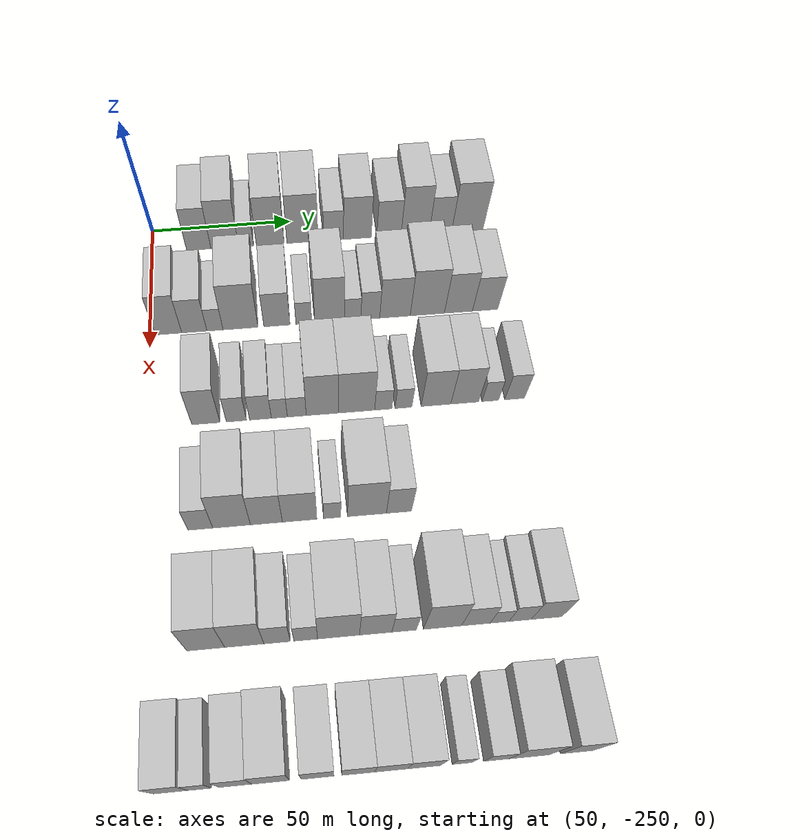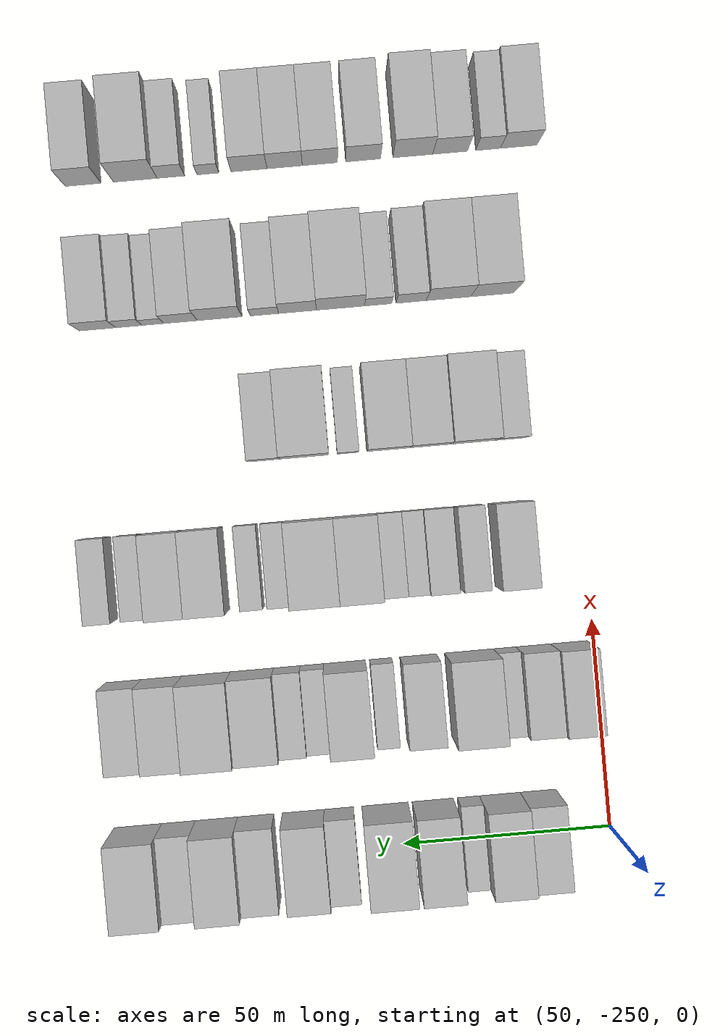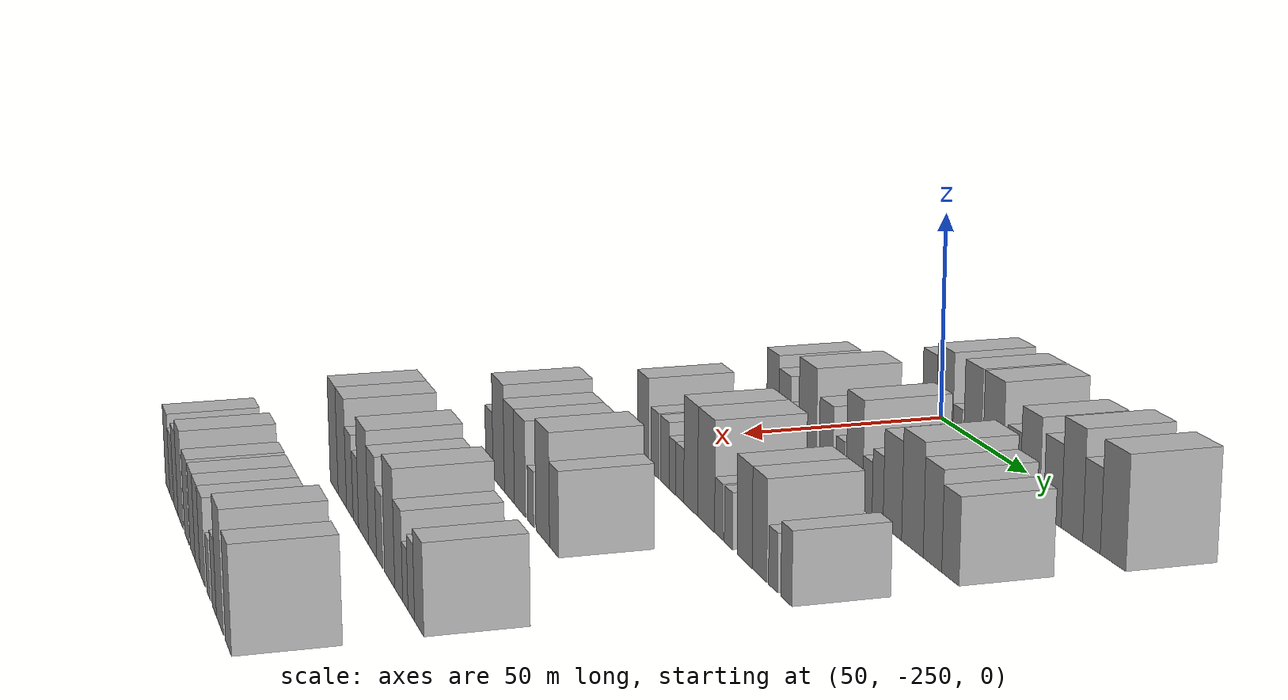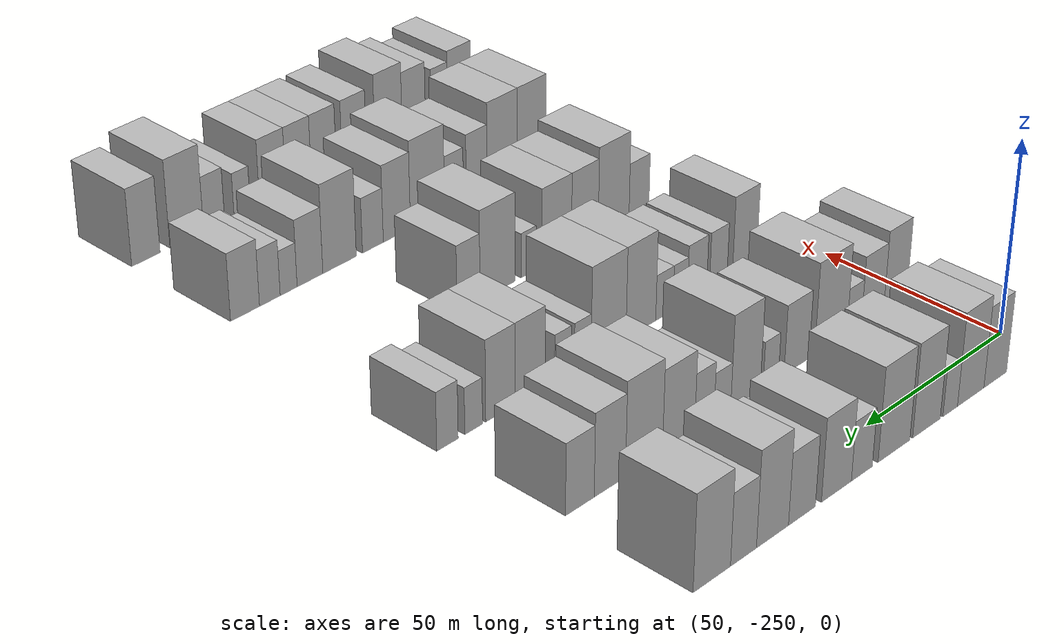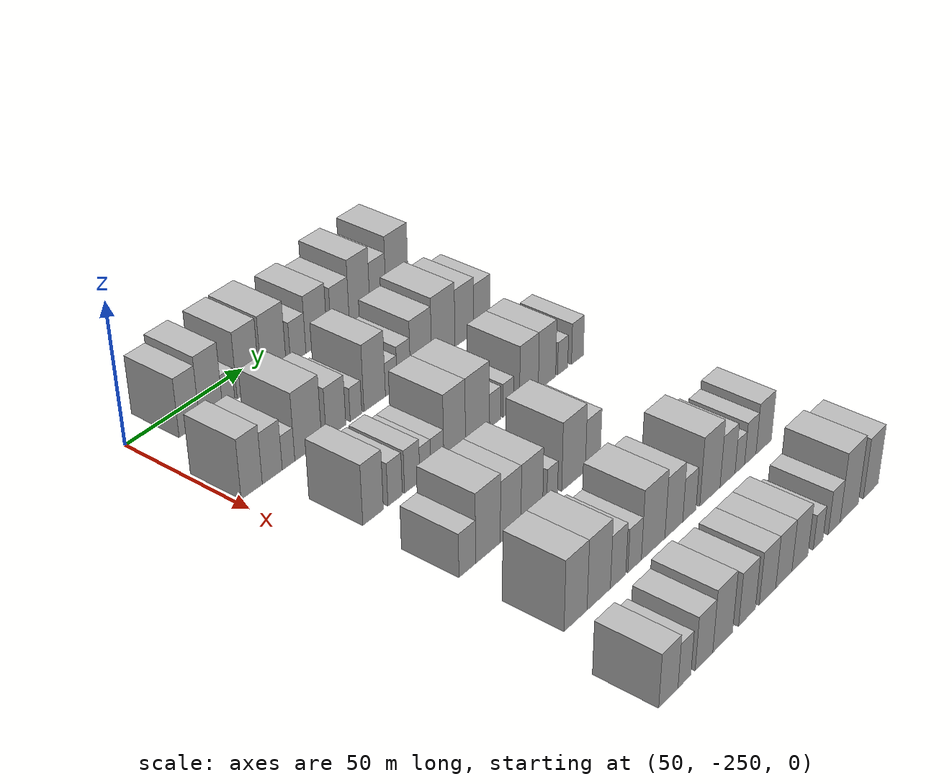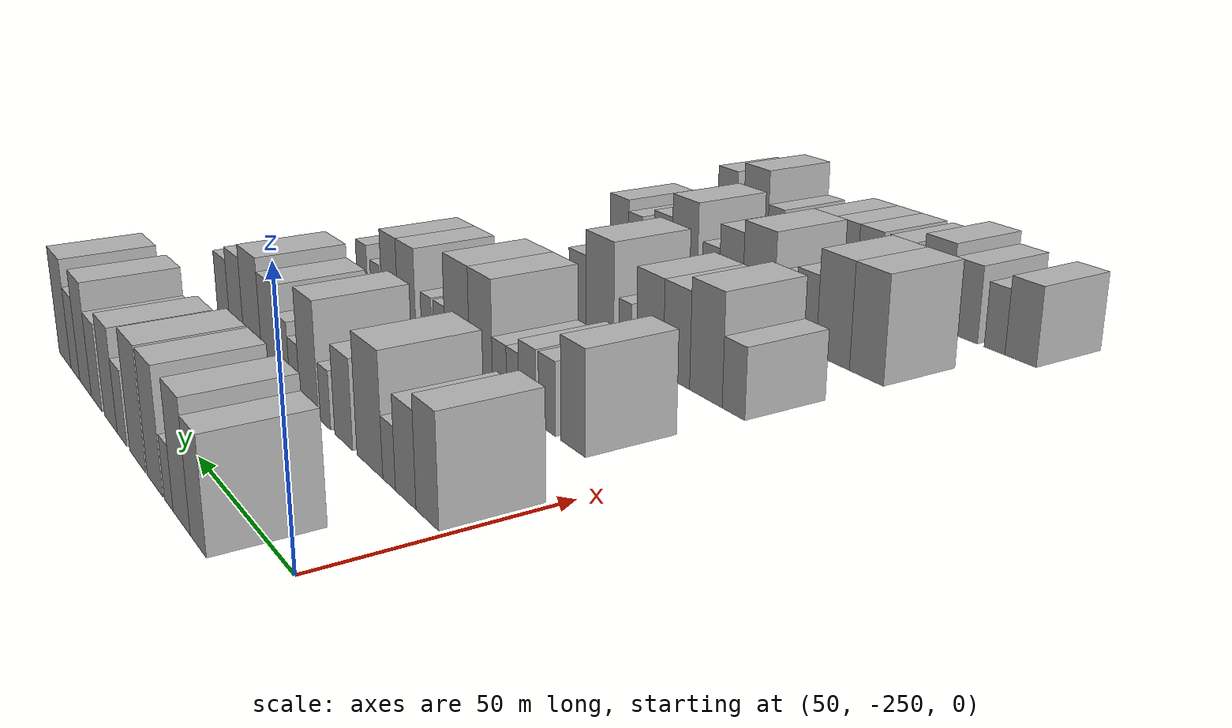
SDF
<sdf version="1.6">
 <world name="default">
  <model name="building_33">
   <static>1</static>
   <pose>50.0000 -233.4024 0 0.000000 0.000000 0.000000</pose>
   <link name="link">
    <pose>0 0 10.50 0 0 0</pose>
    <collision name="collision"><geometry><box><size>20.0000 8.6130 21.0000</size></box></geometry></collision>
    <visual name="visual">
     <cast_shadows>0</cast_shadows>
     <geometry><box><size>20.0000 8.6130 21.0000</size></box></geometry>
     <material>
      <script>
       <uri>model://HANNAS_wall/materials/scripts</uri>
       <uri>model://HANNAS_wall/materials/textures</uri>
       <name>vrc/HANNAS_wall</name>
      </script>
     </material>
    </visual>
   </link>
  </model>
  <model name="building_34">
   <static>1</static>
   <pose>50.0000 -224.1698 0 0.000000 0.000000 0.000000</pose>
   <link name="link">
    <pose>0 0 12.00 0 0 0</pose>
    <collision name="collision"><geometry><box><size>20.0000 9.8521 24.0000</size></box></geometry></collision>
    <visual name="visual">
     <cast_shadows>0</cast_shadows>
     <geometry><box><size>20.0000 9.8521 24.0000</size></box></geometry>
     <material>
      <script>
       <uri>model://HANNAS_wall/materials/scripts</uri>
       <uri>model://HANNAS_wall/materials/textures</uri>
       <name>vrc/HANNAS_wall</name>
      </script>
     </material>
    </visual>
   </link>
  </model>
  <model name="building_35">
   <static>1</static>
   <pose>50.0000 -216.5741 0 0.000000 0.000000 0.000000</pose>
   <link name="link">
    <pose>0 0 6.00 0 0 0</pose>
    <collision name="collision"><geometry><box><size>20.0000 5.3393 12.0000</size></box></geometry></collision>
    <visual name="visual">
     <cast_shadows>0</cast_shadows>
     <geometry><box><size>20.0000 5.3393 12.0000</size></box></geometry>
     <material>
      <script>
       <uri>model://HANNAS_wall/materials/scripts</uri>
       <uri>model://HANNAS_wall/materials/textures</uri>
       <name>vrc/HANNAS_wall</name>
      </script>
     </material>
    </visual>
   </link>
  </model>
  <model name="building_36">
   <static>1</static>
   <pose>50.0000 -207.9369 0 0.000000 0.000000 0.000000</pose>
   <link name="link">
    <pose>0 0 12.00 0 0 0</pose>
    <collision name="collision"><geometry><box><size>20.0000 9.9350 24.0000</size></box></geometry></collision>
    <visual name="visual">
     <cast_shadows>0</cast_shadows>
     <geometry><box><size>20.0000 9.9350 24.0000</size></box></geometry>
     <material>
      <script>
       <uri>model://HANNAS_wall/materials/scripts</uri>
       <uri>model://HANNAS_wall/materials/textures</uri>
       <name>vrc/HANNAS_wall</name>
      </script>
     </material>
    </visual>
   </link>
  </model>
  <model name="building_37">
   <static>1</static>
   <pose>50.0000 -196.3970 0 0.000000 0.000000 0.000000</pose>
   <link name="link">
    <pose>0 0 12.00 0 0 0</pose>
    <collision name="collision"><geometry><box><size>20.0000 11.1449 24.0000</size></box></geometry></collision>
    <visual name="visual">
     <cast_shadows>0</cast_shadows>
     <geometry><box><size>20.0000 11.1449 24.0000</size></box></geometry>
     <material>
      <script>
       <uri>model://HANNAS_wall/materials/scripts</uri>
       <uri>model://HANNAS_wall/materials/textures</uri>
       <name>vrc/HANNAS_wall</name>
      </script>
     </material>
    </visual>
   </link>
  </model>
  <model name="building_38">
   <static>1</static>
   <pose>50.0000 -185.2506 0 0.000000 0.000000 0.000000</pose>
   <link name="link">
    <pose>0 0 7.50 0 0 0</pose>
    <collision name="collision"><geometry><box><size>20.0000 7.1479 15.0000</size></box></geometry></collision>
    <visual name="visual">
     <cast_shadows>0</cast_shadows>
     <geometry><box><size>20.0000 7.1479 15.0000</size></box></geometry>
     <material>
      <script>
       <uri>model://HANNAS_wall/materials/scripts</uri>
       <uri>model://HANNAS_wall/materials/textures</uri>
       <name>vrc/HANNAS_wall</name>
      </script>
     </material>
    </visual>
   </link>
  </model>
  <model name="building_39">
   <static>1</static>
   <pose>50.0000 -176.6455 0 0.000000 0.000000 0.000000</pose>
   <link name="link">
    <pose>0 0 10.50 0 0 0</pose>
    <collision name="collision"><geometry><box><size>20.0000 10.0623 21.0000</size></box></geometry></collision>
    <visual name="visual">
     <cast_shadows>0</cast_shadows>
     <geometry><box><size>20.0000 10.0623 21.0000</size></box></geometry>
     <material>
      <script>
       <uri>model://HANNAS_wall/materials/scripts</uri>
       <uri>model://HANNAS_wall/materials/textures</uri>
       <name>vrc/HANNAS_wall</name>
      </script>
     </material>
    </visual>
   </link>
  </model>
  <model name="building_40">
   <static>1</static>
   <pose>50.0000 -165.2181 0 0.000000 0.000000 0.000000</pose>
   <link name="link">
    <pose>0 0 9.00 0 0 0</pose>
    <collision name="collision"><geometry><box><size>20.0000 8.7925 18.0000</size></box></geometry></collision>
    <visual name="visual">
     <cast_shadows>0</cast_shadows>
     <geometry><box><size>20.0000 8.7925 18.0000</size></box></geometry>
     <material>
      <script>
       <uri>model://HANNAS_wall/materials/scripts</uri>
       <uri>model://HANNAS_wall/materials/textures</uri>
       <name>vrc/HANNAS_wall</name>
      </script>
     </material>
    </visual>
   </link>
  </model>
  <model name="building_41">
   <static>1</static>
   <pose>50.0000 -155.7027 0 0.000000 0.000000 0.000000</pose>
   <link name="link">
    <pose>0 0 12.00 0 0 0</pose>
    <collision name="collision"><geometry><box><size>20.0000 10.2382 24.0000</size></box></geometry></collision>
    <visual name="visual">
     <cast_shadows>0</cast_shadows>
     <geometry><box><size>20.0000 10.2382 24.0000</size></box></geometry>
     <material>
      <script>
       <uri>model://HANNAS_wall/materials/scripts</uri>
       <uri>model://HANNAS_wall/materials/textures</uri>
       <name>vrc/HANNAS_wall</name>
      </script>
     </material>
    </visual>
   </link>
  </model>
  <model name="building_42">
   <static>1</static>
   <pose>50.0000 -146.5190 0 0.000000 0.000000 0.000000</pose>
   <link name="link">
    <pose>0 0 9.00 0 0 0</pose>
    <collision name="collision"><geometry><box><size>20.0000 8.1291 18.0000</size></box></geometry></collision>
    <visual name="visual">
     <cast_shadows>0</cast_shadows>
     <geometry><box><size>20.0000 8.1291 18.0000</size></box></geometry>
     <material>
      <script>
       <uri>model://HANNAS_wall/materials/scripts</uri>
       <uri>model://HANNAS_wall/materials/textures</uri>
       <name>vrc/HANNAS_wall</name>
      </script>
     </material>
    </visual>
   </link>
  </model>
  <model name="building_43">
   <static>1</static>
   <pose>50.0000 -136.7335 0 0.000000 0.000000 0.000000</pose>
   <link name="link">
    <pose>0 0 12.00 0 0 0</pose>
    <collision name="collision"><geometry><box><size>20.0000 11.4420 24.0000</size></box></geometry></collision>
    <visual name="visual">
     <cast_shadows>0</cast_shadows>
     <geometry><box><size>20.0000 11.4420 24.0000</size></box></geometry>
     <material>
      <script>
       <uri>model://HANNAS_wall/materials/scripts</uri>
       <uri>model://HANNAS_wall/materials/textures</uri>
       <name>vrc/HANNAS_wall</name>
      </script>
     </material>
    </visual>
   </link>
  </model>
  <model name="building_163">
   <static>1</static>
   <pose>85.0000 -243.8533 0 0.000000 0.000000 0.000000</pose>
   <link name="link">
    <pose>0 0 10.50 0 0 0</pose>
    <collision name="collision"><geometry><box><size>20.0000 8.8056 21.0000</size></box></geometry></collision>
    <visual name="visual">
     <cast_shadows>0</cast_shadows>
     <geometry><box><size>20.0000 8.8056 21.0000</size></box></geometry>
     <material>
      <script>
       <uri>model://HANNAS_wall/materials/scripts</uri>
       <uri>model://HANNAS_wall/materials/textures</uri>
       <name>vrc/HANNAS_wall</name>
      </script>
     </material>
    </visual>
   </link>
  </model>
  <model name="building_164">
   <static>1</static>
   <pose>85.0000 -235.2449 0 0.000000 0.000000 0.000000</pose>
   <link name="link">
    <pose>0 0 9.00 0 0 0</pose>
    <collision name="collision"><geometry><box><size>20.0000 8.4113 18.0000</size></box></geometry></collision>
    <visual name="visual">
     <cast_shadows>0</cast_shadows>
     <geometry><box><size>20.0000 8.4113 18.0000</size></box></geometry>
     <material>
      <script>
       <uri>model://HANNAS_wall/materials/scripts</uri>
       <uri>model://HANNAS_wall/materials/textures</uri>
       <name>vrc/HANNAS_wall</name>
      </script>
     </material>
    </visual>
   </link>
  </model>
  <model name="building_165">
   <static>1</static>
   <pose>85.0000 -228.3363 0 0.000000 0.000000 0.000000</pose>
   <link name="link">
    <pose>0 0 6.00 0 0 0</pose>
    <collision name="collision"><geometry><box><size>20.0000 5.4058 12.0000</size></box></geometry></collision>
    <visual name="visual">
     <cast_shadows>0</cast_shadows>
     <geometry><box><size>20.0000 5.4058 12.0000</size></box></geometry>
     <material>
      <script>
       <uri>model://HANNAS_wall/materials/scripts</uri>
       <uri>model://HANNAS_wall/materials/textures</uri>
       <name>vrc/HANNAS_wall</name>
      </script>
     </material>
    </visual>
   </link>
  </model>
  <model name="building_166">
   <static>1</static>
   <pose>85.0000 -219.7524 0 0.000000 0.000000 0.000000</pose>
   <link name="link">
    <pose>0 0 12.00 0 0 0</pose>
    <collision name="collision"><geometry><box><size>20.0000 11.7620 24.0000</size></box></geometry></collision>
    <visual name="visual">
     <cast_shadows>0</cast_shadows>
     <geometry><box><size>20.0000 11.7620 24.0000</size></box></geometry>
     <material>
      <script>
       <uri>model://HANNAS_wall/materials/scripts</uri>
       <uri>model://HANNAS_wall/materials/textures</uri>
       <name>vrc/HANNAS_wall</name>
      </script>
     </material>
    </visual>
   </link>
  </model>
  <model name="building_167">
   <static>1</static>
   <pose>85.0000 -207.4541 0 0.000000 0.000000 0.000000</pose>
   <link name="link">
    <pose>0 0 9.00 0 0 0</pose>
    <collision name="collision"><geometry><box><size>20.0000 8.8347 18.0000</size></box></geometry></collision>
    <visual name="visual">
     <cast_shadows>0</cast_shadows>
     <geometry><box><size>20.0000 8.8347 18.0000</size></box></geometry>
     <material>
      <script>
       <uri>model://HANNAS_wall/materials/scripts</uri>
       <uri>model://HANNAS_wall/materials/textures</uri>
       <name>vrc/HANNAS_wall</name>
      </script>
     </material>
    </visual>
   </link>
  </model>
  <model name="building_168">
   <static>1</static>
   <pose>85.0000 -198.3733 0 0.000000 0.000000 0.000000</pose>
   <link name="link">
    <pose>0 0 6.00 0 0 0</pose>
    <collision name="collision"><geometry><box><size>20.0000 5.3268 12.0000</size></box></geometry></collision>
    <visual name="visual">
     <cast_shadows>0</cast_shadows>
     <geometry><box><size>20.0000 5.3268 12.0000</size></box></geometry>
     <material>
      <script>
       <uri>model://HANNAS_wall/materials/scripts</uri>
       <uri>model://HANNAS_wall/materials/textures</uri>
       <name>vrc/HANNAS_wall</name>
      </script>
     </material>
    </visual>
   </link>
  </model>
  <model name="building_169">
   <static>1</static>
   <pose>85.0000 -189.6783 0 0.000000 0.000000 0.000000</pose>
   <link name="link">
    <pose>0 0 12.00 0 0 0</pose>
    <collision name="collision"><geometry><box><size>20.0000 10.0632 24.0000</size></box></geometry></collision>
    <visual name="visual">
     <cast_shadows>0</cast_shadows>
     <geometry><box><size>20.0000 10.0632 24.0000</size></box></geometry>
     <material>
      <script>
       <uri>model://HANNAS_wall/materials/scripts</uri>
       <uri>model://HANNAS_wall/materials/textures</uri>
       <name>vrc/HANNAS_wall</name>
      </script>
     </material>
    </visual>
   </link>
  </model>
  <model name="building_170">
   <static>1</static>
   <pose>85.0000 -181.8300 0 0.000000 0.000000 0.000000</pose>
   <link name="link">
    <pose>0 0 6.00 0 0 0</pose>
    <collision name="collision"><geometry><box><size>20.0000 5.6335 12.0000</size></box></geometry></collision>
    <visual name="visual">
     <cast_shadows>0</cast_shadows>
     <geometry><box><size>20.0000 5.6335 12.0000</size></box></geometry>
     <material>
      <script>
       <uri>model://HANNAS_wall/materials/scripts</uri>
       <uri>model://HANNAS_wall/materials/textures</uri>
       <name>vrc/HANNAS_wall</name>
      </script>
     </material>
    </visual>
   </link>
  </model>
  <model name="building_171">
   <static>1</static>
   <pose>85.0000 -175.8057 0 0.000000 0.000000 0.000000</pose>
   <link name="link">
    <pose>0 0 7.50 0 0 0</pose>
    <collision name="collision"><geometry><box><size>20.0000 6.4151 15.0000</size></box></geometry></collision>
    <visual name="visual">
     <cast_shadows>0</cast_shadows>
     <geometry><box><size>20.0000 6.4151 15.0000</size></box></geometry>
     <material>
      <script>
       <uri>model://HANNAS_wall/materials/scripts</uri>
       <uri>model://HANNAS_wall/materials/textures</uri>
       <name>vrc/HANNAS_wall</name>
      </script>
     </material>
    </visual>
   </link>
  </model>
  <model name="building_172">
   <static>1</static>
   <pose>85.0000 -167.3849 0 0.000000 0.000000 0.000000</pose>
   <link name="link">
    <pose>0 0 10.50 0 0 0</pose>
    <collision name="collision"><geometry><box><size>20.0000 10.4266 21.0000</size></box></geometry></collision>
    <visual name="visual">
     <cast_shadows>0</cast_shadows>
     <geometry><box><size>20.0000 10.4266 21.0000</size></box></geometry>
     <material>
      <script>
       <uri>model://HANNAS_wall/materials/scripts</uri>
       <uri>model://HANNAS_wall/materials/textures</uri>
       <name>vrc/HANNAS_wall</name>
      </script>
     </material>
    </visual>
   </link>
  </model>
  <model name="building_173">
   <static>1</static>
   <pose>85.0000 -156.3026 0 0.000000 0.000000 0.000000</pose>
   <link name="link">
    <pose>0 0 12.00 0 0 0</pose>
    <collision name="collision"><geometry><box><size>20.0000 11.7380 24.0000</size></box></geometry></collision>
    <visual name="visual">
     <cast_shadows>0</cast_shadows>
     <geometry><box><size>20.0000 11.7380 24.0000</size></box></geometry>
     <material>
      <script>
       <uri>model://HANNAS_wall/materials/scripts</uri>
       <uri>model://HANNAS_wall/materials/textures</uri>
       <name>vrc/HANNAS_wall</name>
      </script>
     </material>
    </visual>
   </link>
  </model>
  <model name="building_174">
   <static>1</static>
   <pose>85.0000 -145.5999 0 0.000000 0.000000 0.000000</pose>
   <link name="link">
    <pose>0 0 10.50 0 0 0</pose>
    <collision name="collision"><geometry><box><size>20.0000 9.6675 21.0000</size></box></geometry></collision>
    <visual name="visual">
     <cast_shadows>0</cast_shadows>
     <geometry><box><size>20.0000 9.6675 21.0000</size></box></geometry>
     <material>
      <script>
       <uri>model://HANNAS_wall/materials/scripts</uri>
       <uri>model://HANNAS_wall/materials/textures</uri>
       <name>vrc/HANNAS_wall</name>
      </script>
     </material>
    </visual>
   </link>
  </model>
  <model name="building_175">
   <static>1</static>
   <pose>85.0000 -136.4104 0 0.000000 0.000000 0.000000</pose>
   <link name="link">
    <pose>0 0 9.00 0 0 0</pose>
    <collision name="collision"><geometry><box><size>20.0000 8.7113 18.0000</size></box></geometry></collision>
    <visual name="visual">
     <cast_shadows>0</cast_shadows>
     <geometry><box><size>20.0000 8.7113 18.0000</size></box></geometry>
     <material>
      <script>
       <uri>model://HANNAS_wall/materials/scripts</uri>
       <uri>model://HANNAS_wall/materials/textures</uri>
       <name>vrc/HANNAS_wall</name>
      </script>
     </material>
    </visual>
   </link>
  </model>
  <model name="building_281">
   <static>1</static>
   <pose>120.0000 -231.8530 0 0.000000 0.000000 0.000000</pose>
   <link name="link">
    <pose>0 0 10.50 0 0 0</pose>
    <collision name="collision"><geometry><box><size>20.0000 8.8786 21.0000</size></box></geometry></collision>
    <visual name="visual">
     <cast_shadows>0</cast_shadows>
     <geometry><box><size>20.0000 8.8786 21.0000</size></box></geometry>
     <material>
      <script>
       <uri>model://HANNAS_wall/materials/scripts</uri>
       <uri>model://HANNAS_wall/materials/textures</uri>
       <name>vrc/HANNAS_wall</name>
      </script>
     </material>
    </visual>
   </link>
  </model>
  <model name="building_282">
   <static>1</static>
   <pose>120.0000 -222.2317 0 0.000000 0.000000 0.000000</pose>
   <link name="link">
    <pose>0 0 7.50 0 0 0</pose>
    <collision name="collision"><geometry><box><size>20.0000 6.3639 15.0000</size></box></geometry></collision>
    <visual name="visual">
     <cast_shadows>0</cast_shadows>
     <geometry><box><size>20.0000 6.3639 15.0000</size></box></geometry>
     <material>
      <script>
       <uri>model://HANNAS_wall/materials/scripts</uri>
       <uri>model://HANNAS_wall/materials/textures</uri>
       <name>vrc/HANNAS_wall</name>
      </script>
     </material>
    </visual>
   </link>
  </model>
  <model name="building_283">
   <static>1</static>
   <pose>120.0000 -214.6047 0 0.000000 0.000000 0.000000</pose>
   <link name="link">
    <pose>0 0 7.50 0 0 0</pose>
    <collision name="collision"><geometry><box><size>20.0000 6.8900 15.0000</size></box></geometry></collision>
    <visual name="visual">
     <cast_shadows>0</cast_shadows>
     <geometry><box><size>20.0000 6.8900 15.0000</size></box></geometry>
     <material>
      <script>
       <uri>model://HANNAS_wall/materials/scripts</uri>
       <uri>model://HANNAS_wall/materials/textures</uri>
       <name>vrc/HANNAS_wall</name>
      </script>
     </material>
    </visual>
   </link>
  </model>
  <model name="building_284">
   <static>1</static>
   <pose>120.0000 -208.6235 0 0.000000 0.000000 0.000000</pose>
   <link name="link">
    <pose>0 0 6.00 0 0 0</pose>
    <collision name="collision"><geometry><box><size>20.0000 5.0725 12.0000</size></box></geometry></collision>
    <visual name="visual">
     <cast_shadows>0</cast_shadows>
     <geometry><box><size>20.0000 5.0725 12.0000</size></box></geometry>
     <material>
      <script>
       <uri>model://HANNAS_wall/materials/scripts</uri>
       <uri>model://HANNAS_wall/materials/textures</uri>
       <name>vrc/HANNAS_wall</name>
      </script>
     </material>
    </visual>
   </link>
  </model>
  <model name="building_285">
   <static>1</static>
   <pose>120.0000 -203.0892 0 0.000000 0.000000 0.000000</pose>
   <link name="link">
    <pose>0 0 6.00 0 0 0</pose>
    <collision name="collision"><geometry><box><size>20.0000 5.9961 12.0000</size></box></geometry></collision>
    <visual name="visual">
     <cast_shadows>0</cast_shadows>
     <geometry><box><size>20.0000 5.9961 12.0000</size></box></geometry>
     <material>
      <script>
       <uri>model://HANNAS_wall/materials/scripts</uri>
       <uri>model://HANNAS_wall/materials/textures</uri>
       <name>vrc/HANNAS_wall</name>
      </script>
     </material>
    </visual>
   </link>
  </model>
  <model name="building_286">
   <static>1</static>
   <pose>120.0000 -194.9878 0 0.000000 0.000000 0.000000</pose>
   <link name="link">
    <pose>0 0 12.00 0 0 0</pose>
    <collision name="collision"><geometry><box><size>20.0000 10.2066 24.0000</size></box></geometry></collision>
    <visual name="visual">
     <cast_shadows>0</cast_shadows>
     <geometry><box><size>20.0000 10.2066 24.0000</size></box></geometry>
     <material>
      <script>
       <uri>model://HANNAS_wall/materials/scripts</uri>
       <uri>model://HANNAS_wall/materials/textures</uri>
       <name>vrc/HANNAS_wall</name>
      </script>
     </material>
    </visual>
   </link>
  </model>
  <model name="building_287">
   <static>1</static>
   <pose>120.0000 -184.0534 0 0.000000 0.000000 0.000000</pose>
   <link name="link">
    <pose>0 0 12.00 0 0 0</pose>
    <collision name="collision"><geometry><box><size>20.0000 11.6623 24.0000</size></box></geometry></collision>
    <visual name="visual">
     <cast_shadows>0</cast_shadows>
     <geometry><box><size>20.0000 11.6623 24.0000</size></box></geometry>
     <material>
      <script>
       <uri>model://HANNAS_wall/materials/scripts</uri>
       <uri>model://HANNAS_wall/materials/textures</uri>
       <name>vrc/HANNAS_wall</name>
      </script>
     </material>
    </visual>
   </link>
  </model>
  <model name="building_288">
   <static>1</static>
   <pose>120.0000 -175.4624 0 0.000000 0.000000 0.000000</pose>
   <link name="link">
    <pose>0 0 6.00 0 0 0</pose>
    <collision name="collision"><geometry><box><size>20.0000 5.5197 12.0000</size></box></geometry></collision>
    <visual name="visual">
     <cast_shadows>0</cast_shadows>
     <geometry><box><size>20.0000 5.5197 12.0000</size></box></geometry>
     <material>
      <script>
       <uri>model://HANNAS_wall/materials/scripts</uri>
       <uri>model://HANNAS_wall/materials/textures</uri>
       <name>vrc/HANNAS_wall</name>
      </script>
     </material>
    </visual>
   </link>
  </model>
  <model name="building_289">
   <static>1</static>
   <pose>120.0000 -168.9992 0 0.000000 0.000000 0.000000</pose>
   <link name="link">
    <pose>0 0 6.00 0 0 0</pose>
    <collision name="collision"><geometry><box><size>20.0000 5.4068 12.0000</size></box></geometry></collision>
    <visual name="visual">
     <cast_shadows>0</cast_shadows>
     <geometry><box><size>20.0000 5.4068 12.0000</size></box></geometry>
     <material>
      <script>
       <uri>model://HANNAS_wall/materials/scripts</uri>
       <uri>model://HANNAS_wall/materials/textures</uri>
       <name>vrc/HANNAS_wall</name>
      </script>
     </material>
    </visual>
   </link>
  </model>
  <model name="building_290">
   <static>1</static>
   <pose>120.0000 -158.5037 0 0.000000 0.000000 0.000000</pose>
   <link name="link">
    <pose>0 0 10.50 0 0 0</pose>
    <collision name="collision"><geometry><box><size>20.0000 9.5843 21.0000</size></box></geometry></collision>
    <visual name="visual">
     <cast_shadows>0</cast_shadows>
     <geometry><box><size>20.0000 9.5843 21.0000</size></box></geometry>
     <material>
      <script>
       <uri>model://HANNAS_wall/materials/scripts</uri>
       <uri>model://HANNAS_wall/materials/textures</uri>
       <name>vrc/HANNAS_wall</name>
      </script>
     </material>
    </visual>
   </link>
  </model>
  <model name="building_291">
   <static>1</static>
   <pose>120.0000 -149.1790 0 0.000000 0.000000 0.000000</pose>
   <link name="link">
    <pose>0 0 10.50 0 0 0</pose>
    <collision name="collision"><geometry><box><size>20.0000 9.0650 21.0000</size></box></geometry></collision>
    <visual name="visual">
     <cast_shadows>0</cast_shadows>
     <geometry><box><size>20.0000 9.0650 21.0000</size></box></geometry>
     <material>
      <script>
       <uri>model://HANNAS_wall/materials/scripts</uri>
       <uri>model://HANNAS_wall/materials/textures</uri>
       <name>vrc/HANNAS_wall</name>
      </script>
     </material>
    </visual>
   </link>
  </model>
  <model name="building_292">
   <static>1</static>
   <pose>120.0000 -140.9449 0 0.000000 0.000000 0.000000</pose>
   <link name="link">
    <pose>0 0 6.00 0 0 0</pose>
    <collision name="collision"><geometry><box><size>20.0000 5.4032 12.0000</size></box></geometry></collision>
    <visual name="visual">
     <cast_shadows>0</cast_shadows>
     <geometry><box><size>20.0000 5.4032 12.0000</size></box></geometry>
     <material>
      <script>
       <uri>model://HANNAS_wall/materials/scripts</uri>
       <uri>model://HANNAS_wall/materials/textures</uri>
       <name>vrc/HANNAS_wall</name>
      </script>
     </material>
    </visual>
   </link>
  </model>
  <model name="building_293">
   <static>1</static>
   <pose>120.0000 -133.0382 0 0.000000 0.000000 0.000000</pose>
   <link name="link">
    <pose>0 0 7.50 0 0 0</pose>
    <collision name="collision"><geometry><box><size>20.0000 6.4101 15.0000</size></box></geometry></collision>
    <visual name="visual">
     <cast_shadows>0</cast_shadows>
     <geometry><box><size>20.0000 6.4101 15.0000</size></box></geometry>
     <material>
      <script>
       <uri>model://HANNAS_wall/materials/scripts</uri>
       <uri>model://HANNAS_wall/materials/textures</uri>
       <name>vrc/HANNAS_wall</name>
      </script>
     </material>
    </visual>
   </link>
  </model>
  <model name="building_409">
   <static>1</static>
   <pose>155.0000 -233.9638 0 0.000000 0.000000 0.000000</pose>
   <link name="link">
    <pose>0 0 7.50 0 0 0</pose>
    <collision name="collision"><geometry><box><size>20.0000 7.3293 15.0000</size></box></geometry></collision>
    <visual name="visual">
     <cast_shadows>0</cast_shadows>
     <geometry><box><size>20.0000 7.3293 15.0000</size></box></geometry>
     <material>
      <script>
       <uri>model://HANNAS_wall/materials/scripts</uri>
       <uri>model://HANNAS_wall/materials/textures</uri>
       <name>vrc/HANNAS_wall</name>
      </script>
     </material>
    </visual>
   </link>
  </model>
  <model name="building_410">
   <static>1</static>
   <pose>155.0000 -224.7346 0 0.000000 0.000000 0.000000</pose>
   <link name="link">
    <pose>0 0 12.00 0 0 0</pose>
    <collision name="collision"><geometry><box><size>20.0000 11.1290 24.0000</size></box></geometry></collision>
    <visual name="visual">
     <cast_shadows>0</cast_shadows>
     <geometry><box><size>20.0000 11.1290 24.0000</size></box></geometry>
     <material>
      <script>
       <uri>model://HANNAS_wall/materials/scripts</uri>
       <uri>model://HANNAS_wall/materials/textures</uri>
       <name>vrc/HANNAS_wall</name>
      </script>
     </material>
    </visual>
   </link>
  </model>
  <model name="building_411">
   <static>1</static>
   <pose>155.0000 -214.4296 0 0.000000 0.000000 0.000000</pose>
   <link name="link">
    <pose>0 0 10.50 0 0 0</pose>
    <collision name="collision"><geometry><box><size>20.0000 9.4811 21.0000</size></box></geometry></collision>
    <visual name="visual">
     <cast_shadows>0</cast_shadows>
     <geometry><box><size>20.0000 9.4811 21.0000</size></box></geometry>
     <material>
      <script>
       <uri>model://HANNAS_wall/materials/scripts</uri>
       <uri>model://HANNAS_wall/materials/textures</uri>
       <name>vrc/HANNAS_wall</name>
      </script>
     </material>
    </visual>
   </link>
  </model>
  <model name="building_412">
   <static>1</static>
   <pose>155.0000 -204.5675 0 0.000000 0.000000 0.000000</pose>
   <link name="link">
    <pose>0 0 10.50 0 0 0</pose>
    <collision name="collision"><geometry><box><size>20.0000 10.2431 21.0000</size></box></geometry></collision>
    <visual name="visual">
     <cast_shadows>0</cast_shadows>
     <geometry><box><size>20.0000 10.2431 21.0000</size></box></geometry>
     <material>
      <script>
       <uri>model://HANNAS_wall/materials/scripts</uri>
       <uri>model://HANNAS_wall/materials/textures</uri>
       <name>vrc/HANNAS_wall</name>
      </script>
     </material>
    </visual>
   </link>
  </model>
  <model name="building_413">
   <static>1</static>
   <pose>155.0000 -194.8703 0 0.000000 0.000000 0.000000</pose>
   <link name="link">
    <pose>0 0 6.00 0 0 0</pose>
    <collision name="collision"><geometry><box><size>20.0000 5.1512 12.0000</size></box></geometry></collision>
    <visual name="visual">
     <cast_shadows>0</cast_shadows>
     <geometry><box><size>20.0000 5.1512 12.0000</size></box></geometry>
     <material>
      <script>
       <uri>model://HANNAS_wall/materials/scripts</uri>
       <uri>model://HANNAS_wall/materials/textures</uri>
       <name>vrc/HANNAS_wall</name>
      </script>
     </material>
    </visual>
   </link>
  </model>
  <model name="building_414">
   <static>1</static>
   <pose>155.0000 -184.4607 0 0.000000 0.000000 0.000000</pose>
   <link name="link">
    <pose>0 0 12.00 0 0 0</pose>
    <collision name="collision"><geometry><box><size>20.0000 11.6682 24.0000</size></box></geometry></collision>
    <visual name="visual">
     <cast_shadows>0</cast_shadows>
     <geometry><box><size>20.0000 11.6682 24.0000</size></box></geometry>
     <material>
      <script>
       <uri>model://HANNAS_wall/materials/scripts</uri>
       <uri>model://HANNAS_wall/materials/textures</uri>
       <name>vrc/HANNAS_wall</name>
      </script>
     </material>
    </visual>
   </link>
  </model>
  <model name="building_415">
   <static>1</static>
   <pose>155.0000 -174.8527 0 0.000000 0.000000 0.000000</pose>
   <link name="link">
    <pose>0 0 9.00 0 0 0</pose>
    <collision name="collision"><geometry><box><size>20.0000 7.5477 18.0000</size></box></geometry></collision>
    <visual name="visual">
     <cast_shadows>0</cast_shadows>
     <geometry><box><size>20.0000 7.5477 18.0000</size></box></geometry>
     <material>
      <script>
       <uri>model://HANNAS_wall/materials/scripts</uri>
       <uri>model://HANNAS_wall/materials/textures</uri>
       <name>vrc/HANNAS_wall</name>
      </script>
     </material>
    </visual>
   </link>
  </model>
  <model name="building_528">
   <static>1</static>
   <pose>190.0000 -232.8544 0 0.000000 0.000000 0.000000</pose>
   <link name="link">
    <pose>0 0 12.00 0 0 0</pose>
    <collision name="collision"><geometry><box><size>20.0000 10.4141 24.0000</size></box></geometry></collision>
    <visual name="visual">
     <cast_shadows>0</cast_shadows>
     <geometry><box><size>20.0000 10.4141 24.0000</size></box></geometry>
     <material>
      <script>
       <uri>model://HANNAS_wall/materials/scripts</uri>
       <uri>model://HANNAS_wall/materials/textures</uri>
       <name>vrc/HANNAS_wall</name>
      </script>
     </material>
    </visual>
   </link>
  </model>
  <model name="building_529">
   <static>1</static>
   <pose>190.0000 -222.2458 0 0.000000 0.000000 0.000000</pose>
   <link name="link">
    <pose>0 0 12.00 0 0 0</pose>
    <collision name="collision"><geometry><box><size>20.0000 10.8031 24.0000</size></box></geometry></collision>
    <visual name="visual">
     <cast_shadows>0</cast_shadows>
     <geometry><box><size>20.0000 10.8031 24.0000</size></box></geometry>
     <material>
      <script>
       <uri>model://HANNAS_wall/materials/scripts</uri>
       <uri>model://HANNAS_wall/materials/textures</uri>
       <name>vrc/HANNAS_wall</name>
      </script>
     </material>
    </visual>
   </link>
  </model>
  <model name="building_530">
   <static>1</static>
   <pose>190.0000 -213.1835 0 0.000000 0.000000 0.000000</pose>
   <link name="link">
    <pose>0 0 9.00 0 0 0</pose>
    <collision name="collision"><geometry><box><size>20.0000 7.3214 18.0000</size></box></geometry></collision>
    <visual name="visual">
     <cast_shadows>0</cast_shadows>
     <geometry><box><size>20.0000 7.3214 18.0000</size></box></geometry>
     <material>
      <script>
       <uri>model://HANNAS_wall/materials/scripts</uri>
       <uri>model://HANNAS_wall/materials/textures</uri>
       <name>vrc/HANNAS_wall</name>
      </script>
     </material>
    </visual>
   </link>
  </model>
  <model name="building_531">
   <static>1</static>
   <pose>190.0000 -205.2515 0 0.000000 0.000000 0.000000</pose>
   <link name="link">
    <pose>0 0 7.50 0 0 0</pose>
    <collision name="collision"><geometry><box><size>20.0000 6.5425 15.0000</size></box></geometry></collision>
    <visual name="visual">
     <cast_shadows>0</cast_shadows>
     <geometry><box><size>20.0000 6.5425 15.0000</size></box></geometry>
     <material>
      <script>
       <uri>model://HANNAS_wall/materials/scripts</uri>
       <uri>model://HANNAS_wall/materials/textures</uri>
       <name>vrc/HANNAS_wall</name>
      </script>
     </material>
    </visual>
   </link>
  </model>
  <model name="building_532">
   <static>1</static>
   <pose>190.0000 -196.1593 0 0.000000 0.000000 0.000000</pose>
   <link name="link">
    <pose>0 0 12.00 0 0 0</pose>
    <collision name="collision"><geometry><box><size>20.0000 11.6418 24.0000</size></box></geometry></collision>
    <visual name="visual">
     <cast_shadows>0</cast_shadows>
     <geometry><box><size>20.0000 11.6418 24.0000</size></box></geometry>
     <material>
      <script>
       <uri>model://HANNAS_wall/materials/scripts</uri>
       <uri>model://HANNAS_wall/materials/textures</uri>
       <name>vrc/HANNAS_wall</name>
      </script>
     </material>
    </visual>
   </link>
  </model>
  <model name="building_533">
   <static>1</static>
   <pose>190.0000 -185.7989 0 0.000000 0.000000 0.000000</pose>
   <link name="link">
    <pose>0 0 10.50 0 0 0</pose>
    <collision name="collision"><geometry><box><size>20.0000 9.0792 21.0000</size></box></geometry></collision>
    <visual name="visual">
     <cast_shadows>0</cast_shadows>
     <geometry><box><size>20.0000 9.0792 21.0000</size></box></geometry>
     <material>
      <script>
       <uri>model://HANNAS_wall/materials/scripts</uri>
       <uri>model://HANNAS_wall/materials/textures</uri>
       <name>vrc/HANNAS_wall</name>
      </script>
     </material>
    </visual>
   </link>
  </model>
  <model name="building_534">
   <static>1</static>
   <pose>190.0000 -177.8338 0 0.000000 0.000000 0.000000</pose>
   <link name="link">
    <pose>0 0 7.50 0 0 0</pose>
    <collision name="collision"><geometry><box><size>20.0000 6.8509 15.0000</size></box></geometry></collision>
    <visual name="visual">
     <cast_shadows>0</cast_shadows>
     <geometry><box><size>20.0000 6.8509 15.0000</size></box></geometry>
     <material>
      <script>
       <uri>model://HANNAS_wall/materials/scripts</uri>
       <uri>model://HANNAS_wall/materials/textures</uri>
       <name>vrc/HANNAS_wall</name>
      </script>
     </material>
    </visual>
   </link>
  </model>
  <model name="building_535">
   <static>1</static>
   <pose>190.0000 -167.0219 0 0.000000 0.000000 0.000000</pose>
   <link name="link">
    <pose>0 0 12.00 0 0 0</pose>
    <collision name="collision"><geometry><box><size>20.0000 10.7730 24.0000</size></box></geometry></collision>
    <visual name="visual">
     <cast_shadows>0</cast_shadows>
     <geometry><box><size>20.0000 10.7730 24.0000</size></box></geometry>
     <material>
      <script>
       <uri>model://HANNAS_wall/materials/scripts</uri>
       <uri>model://HANNAS_wall/materials/textures</uri>
       <name>vrc/HANNAS_wall</name>
      </script>
     </material>
    </visual>
   </link>
  </model>
  <model name="building_536">
   <static>1</static>
   <pose>190.0000 -157.5748 0 0.000000 0.000000 0.000000</pose>
   <link name="link">
    <pose>0 0 9.00 0 0 0</pose>
    <collision name="collision"><geometry><box><size>20.0000 8.1211 18.0000</size></box></geometry></collision>
    <visual name="visual">
     <cast_shadows>0</cast_shadows>
     <geometry><box><size>20.0000 8.1211 18.0000</size></box></geometry>
     <material>
      <script>
       <uri>model://HANNAS_wall/materials/scripts</uri>
       <uri>model://HANNAS_wall/materials/textures</uri>
       <name>vrc/HANNAS_wall</name>
      </script>
     </material>
    </visual>
   </link>
  </model>
  <model name="building_537">
   <static>1</static>
   <pose>190.0000 -150.8769 0 0.000000 0.000000 0.000000</pose>
   <link name="link">
    <pose>0 0 6.00 0 0 0</pose>
    <collision name="collision"><geometry><box><size>20.0000 5.2747 12.0000</size></box></geometry></collision>
    <visual name="visual">
     <cast_shadows>0</cast_shadows>
     <geometry><box><size>20.0000 5.2747 12.0000</size></box></geometry>
     <material>
      <script>
       <uri>model://HANNAS_wall/materials/scripts</uri>
       <uri>model://HANNAS_wall/materials/textures</uri>
       <name>vrc/HANNAS_wall</name>
      </script>
     </material>
    </visual>
   </link>
  </model>
  <model name="building_538">
   <static>1</static>
   <pose>190.0000 -145.0642 0 0.000000 0.000000 0.000000</pose>
   <link name="link">
    <pose>0 0 7.50 0 0 0</pose>
    <collision name="collision"><geometry><box><size>20.0000 6.3507 15.0000</size></box></geometry></collision>
    <visual name="visual">
     <cast_shadows>0</cast_shadows>
     <geometry><box><size>20.0000 6.3507 15.0000</size></box></geometry>
     <material>
      <script>
       <uri>model://HANNAS_wall/materials/scripts</uri>
       <uri>model://HANNAS_wall/materials/textures</uri>
       <name>vrc/HANNAS_wall</name>
      </script>
     </material>
    </visual>
   </link>
  </model>
  <model name="building_539">
   <static>1</static>
   <pose>190.0000 -137.4971 0 0.000000 0.000000 0.000000</pose>
   <link name="link">
    <pose>0 0 9.00 0 0 0</pose>
    <collision name="collision"><geometry><box><size>20.0000 8.7835 18.0000</size></box></geometry></collision>
    <visual name="visual">
     <cast_shadows>0</cast_shadows>
     <geometry><box><size>20.0000 8.7835 18.0000</size></box></geometry>
     <material>
      <script>
       <uri>model://HANNAS_wall/materials/scripts</uri>
       <uri>model://HANNAS_wall/materials/textures</uri>
       <name>vrc/HANNAS_wall</name>
      </script>
     </material>
    </visual>
   </link>
  </model>
  <model name="building_659">
   <static>1</static>
   <pose>225.0000 -242.2893 0 0.000000 0.000000 0.000000</pose>
   <link name="link">
    <pose>0 0 9.00 0 0 0</pose>
    <collision name="collision"><geometry><box><size>20.0000 8.7606 18.0000</size></box></geometry></collision>
    <visual name="visual">
     <cast_shadows>0</cast_shadows>
     <geometry><box><size>20.0000 8.7606 18.0000</size></box></geometry>
     <material>
      <script>
       <uri>model://HANNAS_wall/materials/scripts</uri>
       <uri>model://HANNAS_wall/materials/textures</uri>
       <name>vrc/HANNAS_wall</name>
      </script>
     </material>
    </visual>
   </link>
  </model>
  <model name="building_660">
   <static>1</static>
   <pose>225.0000 -234.9048 0 0.000000 0.000000 0.000000</pose>
   <link name="link">
    <pose>0 0 7.50 0 0 0</pose>
    <collision name="collision"><geometry><box><size>20.0000 6.0083 15.0000</size></box></geometry></collision>
    <visual name="visual">
     <cast_shadows>0</cast_shadows>
     <geometry><box><size>20.0000 6.0083 15.0000</size></box></geometry>
     <material>
      <script>
       <uri>model://HANNAS_wall/materials/scripts</uri>
       <uri>model://HANNAS_wall/materials/textures</uri>
       <name>vrc/HANNAS_wall</name>
      </script>
     </material>
    </visual>
   </link>
  </model>
  <model name="building_661">
   <static>1</static>
   <pose>225.0000 -225.7123 0 0.000000 0.000000 0.000000</pose>
   <link name="link">
    <pose>0 0 9.00 0 0 0</pose>
    <collision name="collision"><geometry><box><size>20.0000 8.3767 18.0000</size></box></geometry></collision>
    <visual name="visual">
     <cast_shadows>0</cast_shadows>
     <geometry><box><size>20.0000 8.3767 18.0000</size></box></geometry>
     <material>
      <script>
       <uri>model://HANNAS_wall/materials/scripts</uri>
       <uri>model://HANNAS_wall/materials/textures</uri>
       <name>vrc/HANNAS_wall</name>
      </script>
     </material>
    </visual>
   </link>
  </model>
  <model name="building_662">
   <static>1</static>
   <pose>225.0000 -216.7017 0 0.000000 0.000000 0.000000</pose>
   <link name="link">
    <pose>0 0 10.50 0 0 0</pose>
    <collision name="collision"><geometry><box><size>20.0000 9.6444 21.0000</size></box></geometry></collision>
    <visual name="visual">
     <cast_shadows>0</cast_shadows>
     <geometry><box><size>20.0000 9.6444 21.0000</size></box></geometry>
     <material>
      <script>
       <uri>model://HANNAS_wall/materials/scripts</uri>
       <uri>model://HANNAS_wall/materials/textures</uri>
       <name>vrc/HANNAS_wall</name>
      </script>
     </material>
    </visual>
   </link>
  </model>
  <model name="building_663">
   <static>1</static>
   <pose>225.0000 -204.6889 0 0.000000 0.000000 0.000000</pose>
   <link name="link">
    <pose>0 0 9.00 0 0 0</pose>
    <collision name="collision"><geometry><box><size>20.0000 8.3811 18.0000</size></box></geometry></collision>
    <visual name="visual">
     <cast_shadows>0</cast_shadows>
     <geometry><box><size>20.0000 8.3811 18.0000</size></box></geometry>
     <material>
      <script>
       <uri>model://HANNAS_wall/materials/scripts</uri>
       <uri>model://HANNAS_wall/materials/textures</uri>
       <name>vrc/HANNAS_wall</name>
      </script>
     </material>
    </visual>
   </link>
  </model>
  <model name="building_664">
   <static>1</static>
   <pose>225.0000 -194.2515 0 0.000000 0.000000 0.000000</pose>
   <link name="link">
    <pose>0 0 9.00 0 0 0</pose>
    <collision name="collision"><geometry><box><size>20.0000 8.4938 18.0000</size></box></geometry></collision>
    <visual name="visual">
     <cast_shadows>0</cast_shadows>
     <geometry><box><size>20.0000 8.4938 18.0000</size></box></geometry>
     <material>
      <script>
       <uri>model://HANNAS_wall/materials/scripts</uri>
       <uri>model://HANNAS_wall/materials/textures</uri>
       <name>vrc/HANNAS_wall</name>
      </script>
     </material>
    </visual>
   </link>
  </model>
  <model name="building_665">
   <static>1</static>
   <pose>225.0000 -185.7422 0 0.000000 0.000000 0.000000</pose>
   <link name="link">
    <pose>0 0 9.00 0 0 0</pose>
    <collision name="collision"><geometry><box><size>20.0000 8.5248 18.0000</size></box></geometry></collision>
    <visual name="visual">
     <cast_shadows>0</cast_shadows>
     <geometry><box><size>20.0000 8.5248 18.0000</size></box></geometry>
     <material>
      <script>
       <uri>model://HANNAS_wall/materials/scripts</uri>
       <uri>model://HANNAS_wall/materials/textures</uri>
       <name>vrc/HANNAS_wall</name>
      </script>
     </material>
    </visual>
   </link>
  </model>
  <model name="building_666">
   <static>1</static>
   <pose>225.0000 -177.1580 0 0.000000 0.000000 0.000000</pose>
   <link name="link">
    <pose>0 0 9.00 0 0 0</pose>
    <collision name="collision"><geometry><box><size>20.0000 8.6437 18.0000</size></box></geometry></collision>
    <visual name="visual">
     <cast_shadows>0</cast_shadows>
     <geometry><box><size>20.0000 8.6437 18.0000</size></box></geometry>
     <material>
      <script>
       <uri>model://HANNAS_wall/materials/scripts</uri>
       <uri>model://HANNAS_wall/materials/textures</uri>
       <name>vrc/HANNAS_wall</name>
      </script>
     </material>
    </visual>
   </link>
  </model>
  <model name="building_667">
   <static>1</static>
   <pose>225.0000 -167.2116 0 0.000000 0.000000 0.000000</pose>
   <link name="link">
    <pose>0 0 6.00 0 0 0</pose>
    <collision name="collision"><geometry><box><size>20.0000 5.2490 12.0000</size></box></geometry></collision>
    <visual name="visual">
     <cast_shadows>0</cast_shadows>
     <geometry><box><size>20.0000 5.2490 12.0000</size></box></geometry>
     <material>
      <script>
       <uri>model://HANNAS_wall/materials/scripts</uri>
       <uri>model://HANNAS_wall/materials/textures</uri>
       <name>vrc/HANNAS_wall</name>
      </script>
     </material>
    </visual>
   </link>
  </model>
  <model name="building_668">
   <static>1</static>
   <pose>225.0000 -158.2565 0 0.000000 0.000000 0.000000</pose>
   <link name="link">
    <pose>0 0 7.50 0 0 0</pose>
    <collision name="collision"><geometry><box><size>20.0000 6.6613 15.0000</size></box></geometry></collision>
    <visual name="visual">
     <cast_shadows>0</cast_shadows>
     <geometry><box><size>20.0000 6.6613 15.0000</size></box></geometry>
     <material>
      <script>
       <uri>model://HANNAS_wall/materials/scripts</uri>
       <uri>model://HANNAS_wall/materials/textures</uri>
       <name>vrc/HANNAS_wall</name>
      </script>
     </material>
    </visual>
   </link>
  </model>
  <model name="building_669">
   <static>1</static>
   <pose>225.0000 -149.6620 0 0.000000 0.000000 0.000000</pose>
   <link name="link">
    <pose>0 0 12.00 0 0 0</pose>
    <collision name="collision"><geometry><box><size>20.0000 10.5277 24.0000</size></box></geometry></collision>
    <visual name="visual">
     <cast_shadows>0</cast_shadows>
     <geometry><box><size>20.0000 10.5277 24.0000</size></box></geometry>
     <material>
      <script>
       <uri>model://HANNAS_wall/materials/scripts</uri>
       <uri>model://HANNAS_wall/materials/textures</uri>
       <name>vrc/HANNAS_wall</name>
      </script>
     </material>
    </visual>
   </link>
  </model>
  <model name="building_670">
   <static>1</static>
   <pose>225.0000 -137.0733 0 0.000000 0.000000 0.000000</pose>
   <link name="link">
    <pose>0 0 10.50 0 0 0</pose>
    <collision name="collision"><geometry><box><size>20.0000 8.6498 21.0000</size></box></geometry></collision>
    <visual name="visual">
     <cast_shadows>0</cast_shadows>
     <geometry><box><size>20.0000 8.6498 21.0000</size></box></geometry>
     <material>
      <script>
       <uri>model://HANNAS_wall/materials/scripts</uri>
       <uri>model://HANNAS_wall/materials/textures</uri>
       <name>vrc/HANNAS_wall</name>
      </script>
     </material>
    </visual>
   </link>
  </model>
 </world>
</sdf>
